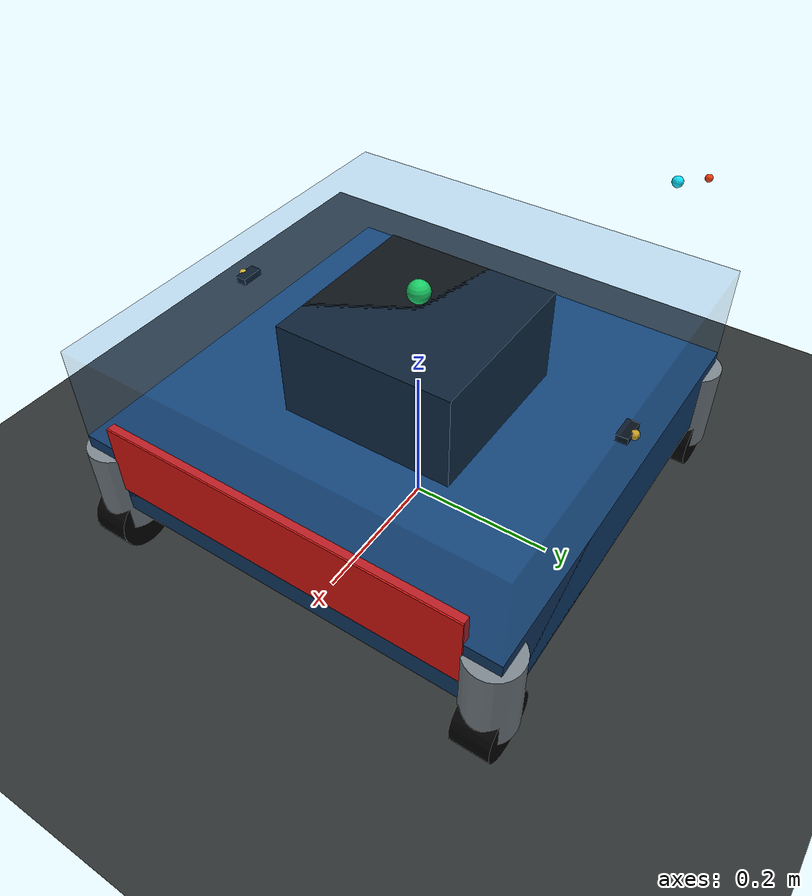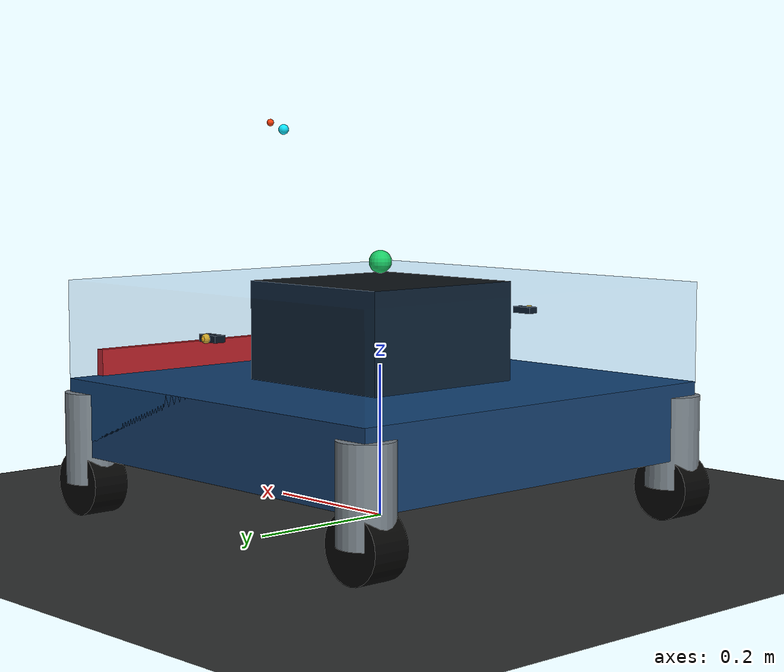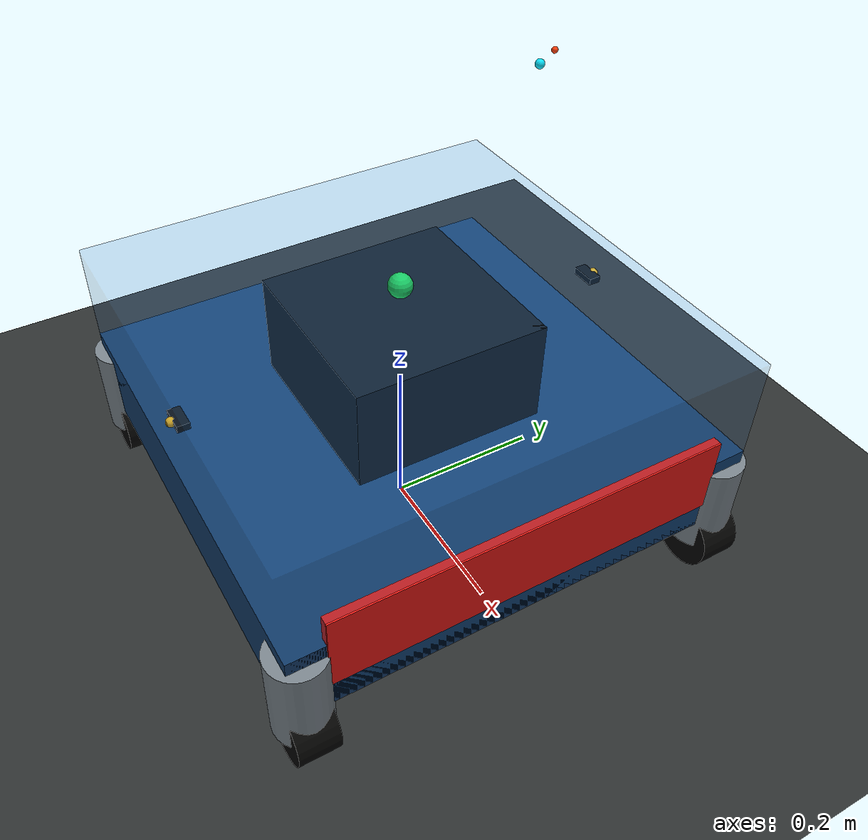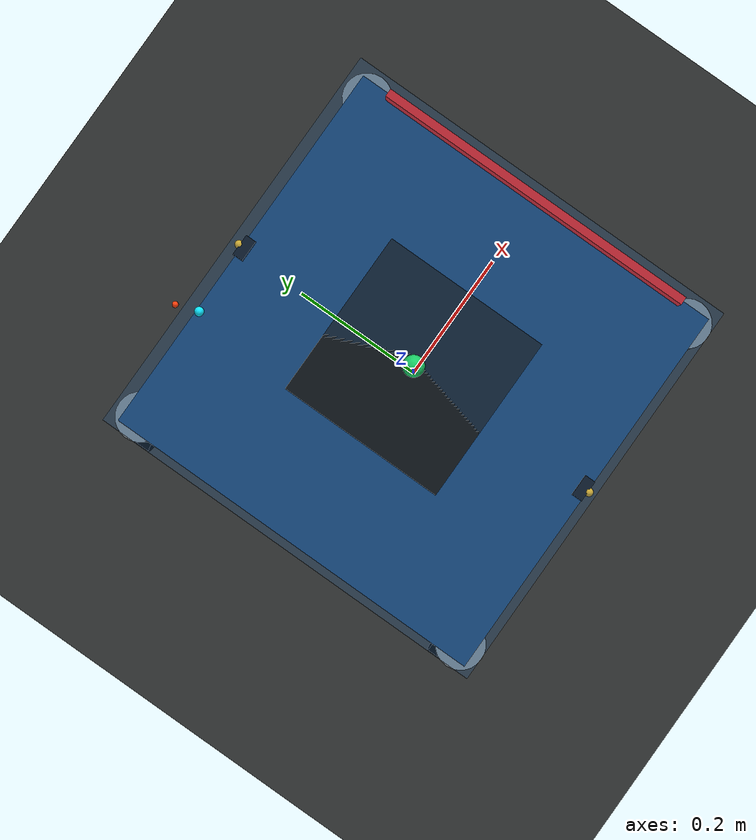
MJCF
<mujoco model="four_swerve_chassis">
  <compiler angle="radian" autolimits="true"/>
  <option timestep="0.002" gravity="0 0 -9.81" integrator="implicitfast"/>

  <asset>
    <material name="grid" rgba="0.18 0.19 0.19 1"
              reflectance="0.08" specular="0.05"/>
    <material name="body_blue" rgba="0.08 0.24 0.42 1"/>
    <material name="body_dark" rgba="0.05 0.07 0.09 1"/>
    <material name="module_metal" rgba="0.48 0.52 0.55 1"/>
    <material name="wheel_rubber" rgba="0.02 0.02 0.018 1"/>
    <material name="front_marker" rgba="0.9 0.1 0.08 1"/>
    <material name="lidar_black" rgba="0.02 0.025 0.03 1"/>
    <material name="lidar_window" rgba="0.05 0.8 0.95 0.55"/>
    <material name="tof_body" rgba="0.04 0.04 0.045 1"/>
    <material name="tof_window" rgba="0.9 0.75 0.08 0.65"/>
    <mesh name="mid360_mesh" file="meshes/mid360.obj"/>
  </asset>

  <default>
    <joint damping="0.02" armature="0.002"/>
    <geom friction="3 0.02 0.005" condim="3" margin="0.001"/>
    <default class="steer_joint">
      <joint type="hinge" axis="0 0 1" range="-3.14159 3.14159"
             damping="0.25" armature="0.01"/>
    </default>
    <default class="wheel_joint">
      <joint type="hinge" axis="0 1 0" damping="0.01" armature="0.004"/>
    </default>
    <default class="wheel_geom">
      <!-- 42.5 mm is the final rolling radius including the 10 mm rubber layer. -->
      <geom type="cylinder" size="0.0425 0.025" quat="0.7071068 0.7071068 0 0"
            material="wheel_rubber" mass="0.375" friction="0.8 0.02 0.005"
            priority="1" group="0"/>
    </default>
  </default>

  <worldbody>
    <light name="sun" directional="true" pos="0 0 5" dir="-0.3 -0.4 -1"/>
    <geom name="floor" type="plane" size="3 3 0.05" material="grid"/>

    <body name="base_link" pos="0 0 0.18">
      <freejoint/>
      <inertial pos="0 0 -0.07630435" mass="23"
                diaginertia="0.80828571 1.26828571 1.58371429"/>

      <geom name="base_size_envelope" type="box" pos="0 0 0.015"
            size="0.290 0.290 0.115"
            rgba="0.1 0.4 0.7 0.12" contype="0" conaffinity="0"
            group="0"/>
      <geom name="base_collision" type="box" pos="0 0 0.015"
            size="0.290 0.290 0.115"
            rgba="0.1 0.4 0.7 0.0" contype="1" conaffinity="1"
            group="3"/>
      <geom name="lower_plate" type="box" pos="0 0 -0.050"
            size="0.290 0.290 0.050" material="body_blue"
            contype="0" conaffinity="0" group="0"/>
      <geom name="upper_plate" type="box" pos="0 0 0.065"
            size="0.120 0.120 0.065" material="body_dark"
            contype="0" conaffinity="0" group="0"/>
      <geom name="front_marker" type="box" pos="0.286 0 -0.015"
            size="0.006 0.245 0.050" material="front_marker"
            contype="0" conaffinity="0" group="0"/>

      <!-- Mid360 mount matches ats_sentry_robot.sdf.xmacro livox pose:
           xyz (-0.100, 0.245, 0.325), rpy (75 deg, 0, -161 deg) from gimbal_yaw_odom. -->
      <body name="lidar_link" pos="-0.100 0.245 0.325"
            quat="0.1309410694 0.1004746164 -0.6004126322 -0.7824729765">
        <geom name="mid360_visual" type="mesh" mesh="mid360_mesh"
              quat="0 0 0 1" material="lidar_black"
              density="0" contype="0" conaffinity="0" group="3"/>
        <site name="lidar_site" pos="0 0 0"
              size="0.006" rgba="0.05 0.9 1 1"/>
        <site name="lidar_raycast_site" pos="0 0 0.030"
              size="0.004" rgba="1 0.25 0.05 1"/>
      </body>

      <body name="left_tof_link" pos="0 0.276 0.075">
        <geom name="left_tof_body" type="box" size="0.015625 0.007675 0.004390"
              material="tof_body" density="0" contype="0" conaffinity="0"
              group="0"/>
        <geom name="left_tof_window" type="box" pos="0 0.008175 0"
              size="0.012000 0.000500 0.003200" material="tof_window"
              density="0" contype="0" conaffinity="0" group="0"/>
        <site name="left_tof_site" pos="0 0.009000 0"
              quat="0.7071068 0 0 0.7071068"
              size="0.006" rgba="1.0 0.75 0.1 1"/>
      </body>

      <body name="right_tof_link" pos="0 -0.276 0.075">
        <geom name="right_tof_body" type="box" size="0.015625 0.007675 0.004390"
              material="tof_body" density="0" contype="0" conaffinity="0"
              group="0"/>
        <geom name="right_tof_window" type="box" pos="0 -0.008175 0"
              size="0.012000 0.000500 0.003200" material="tof_window"
              density="0" contype="0" conaffinity="0" group="0"/>
        <site name="right_tof_site" pos="0 -0.009000 0"
              quat="0.7071068 0 0 -0.7071068"
              size="0.006" rgba="1.0 0.75 0.1 1"/>
      </body>

      <body name="front_left_steer_link" pos="0.270 0.270 -0.1375">
        <joint name="front_left_steer_joint" class="steer_joint"/>
        <geom name="front_left_steer_post" type="cylinder" pos="0 0 0.060"
              size="0.035 0.060" material="module_metal" mass="0.125"
              contype="0" conaffinity="0" group="0"/>
        <body name="front_left_wheel_link">
          <joint name="front_left_wheel_joint" class="wheel_joint"/>
          <geom name="front_left_wheel" class="wheel_geom"/>
        </body>
      </body>

      <body name="front_right_steer_link" pos="0.270 -0.270 -0.1375">
        <joint name="front_right_steer_joint" class="steer_joint"/>
        <geom name="front_right_steer_post" type="cylinder" pos="0 0 0.060"
              size="0.035 0.060" material="module_metal" mass="0.125"
              contype="0" conaffinity="0" group="0"/>
        <body name="front_right_wheel_link">
          <joint name="front_right_wheel_joint" class="wheel_joint"/>
          <geom name="front_right_wheel" class="wheel_geom"/>
        </body>
      </body>

      <body name="rear_left_steer_link" pos="-0.270 0.270 -0.1375">
        <joint name="rear_left_steer_joint" class="steer_joint"/>
        <geom name="rear_left_steer_post" type="cylinder" pos="0 0 0.060"
              size="0.035 0.060" material="module_metal" mass="0.125"
              contype="0" conaffinity="0" group="0"/>
        <body name="rear_left_wheel_link">
          <joint name="rear_left_wheel_joint" class="wheel_joint"/>
          <geom name="rear_left_wheel" class="wheel_geom"/>
        </body>
      </body>

      <body name="rear_right_steer_link" pos="-0.270 -0.270 -0.1375">
        <joint name="rear_right_steer_joint" class="steer_joint"/>
        <geom name="rear_right_steer_post" type="cylinder" pos="0 0 0.060"
              size="0.035 0.060" material="module_metal" mass="0.125"
              contype="0" conaffinity="0" group="0"/>
        <body name="rear_right_wheel_link">
          <joint name="rear_right_wheel_joint" class="wheel_joint"/>
          <geom name="rear_right_wheel" class="wheel_geom"/>
        </body>
      </body>

      <site name="imu_site" pos="0 0 0.155" size="0.015" rgba="0.1 0.8 0.4 1"/>
    </body>
  </worldbody>

  <contact>
    <exclude body1="base_link" body2="front_left_wheel_link"/>
    <exclude body1="base_link" body2="front_right_wheel_link"/>
    <exclude body1="base_link" body2="rear_left_wheel_link"/>
    <exclude body1="base_link" body2="rear_right_wheel_link"/>
  </contact>

  <!-- Control order: 4 steering angles in rad, then 4 wheel speeds in rad/s. -->
  <actuator>
    <position name="front_left_steer_pos" joint="front_left_steer_joint"
              kp="240" kv="8" ctrlrange="-3.14159 3.14159" forcerange="-60 60"/>
    <position name="front_right_steer_pos" joint="front_right_steer_joint"
              kp="240" kv="8" ctrlrange="-3.14159 3.14159" forcerange="-60 60"/>
    <position name="rear_left_steer_pos" joint="rear_left_steer_joint"
              kp="240" kv="8" ctrlrange="-3.14159 3.14159" forcerange="-60 60"/>
    <position name="rear_right_steer_pos" joint="rear_right_steer_joint"
              kp="240" kv="8" ctrlrange="-3.14159 3.14159" forcerange="-60 60"/>

    <velocity name="front_left_wheel_vel" joint="front_left_wheel_joint"
              kv="1.0" ctrlrange="-39.26991 39.26991" forcerange="-2.1 2.1"/>
    <velocity name="front_right_wheel_vel" joint="front_right_wheel_joint"
              kv="1.0" ctrlrange="-39.26991 39.26991" forcerange="-2.1 2.1"/>
    <velocity name="rear_left_wheel_vel" joint="rear_left_wheel_joint"
              kv="1.0" ctrlrange="-39.26991 39.26991" forcerange="-2.1 2.1"/>
    <velocity name="rear_right_wheel_vel" joint="rear_right_wheel_joint"
              kv="1.0" ctrlrange="-39.26991 39.26991" forcerange="-2.1 2.1"/>
  </actuator>

  <sensor>
    <jointpos name="front_left_steer_pos_sensor" joint="front_left_steer_joint"/>
    <jointpos name="front_right_steer_pos_sensor" joint="front_right_steer_joint"/>
    <jointpos name="rear_left_steer_pos_sensor" joint="rear_left_steer_joint"/>
    <jointpos name="rear_right_steer_pos_sensor" joint="rear_right_steer_joint"/>

    <jointvel name="front_left_wheel_vel_sensor" joint="front_left_wheel_joint"/>
    <jointvel name="front_right_wheel_vel_sensor" joint="front_right_wheel_joint"/>
    <jointvel name="rear_left_wheel_vel_sensor" joint="rear_left_wheel_joint"/>
    <jointvel name="rear_right_wheel_vel_sensor" joint="rear_right_wheel_joint"/>

    <gyro name="imu_gyro" site="imu_site"/>
    <accelerometer name="imu_accel" site="imu_site"/>
  </sensor>
</mujoco>
